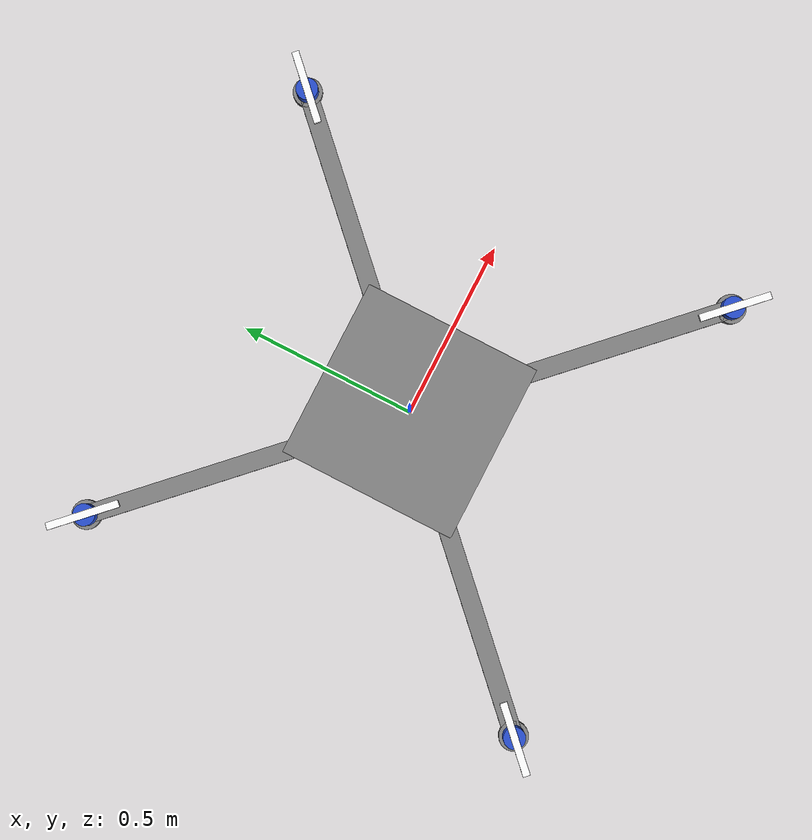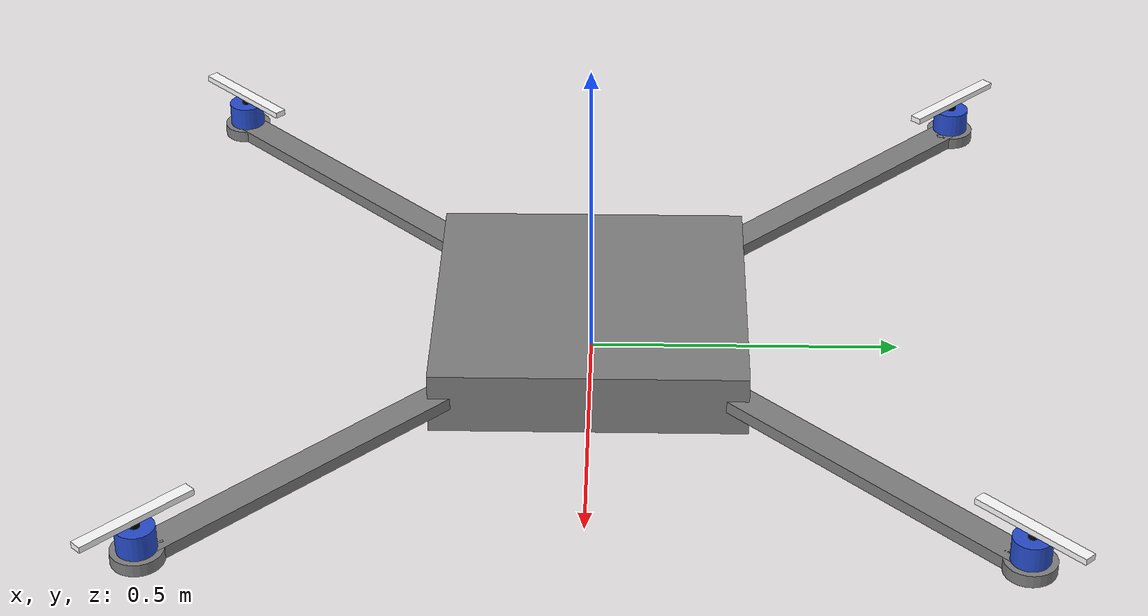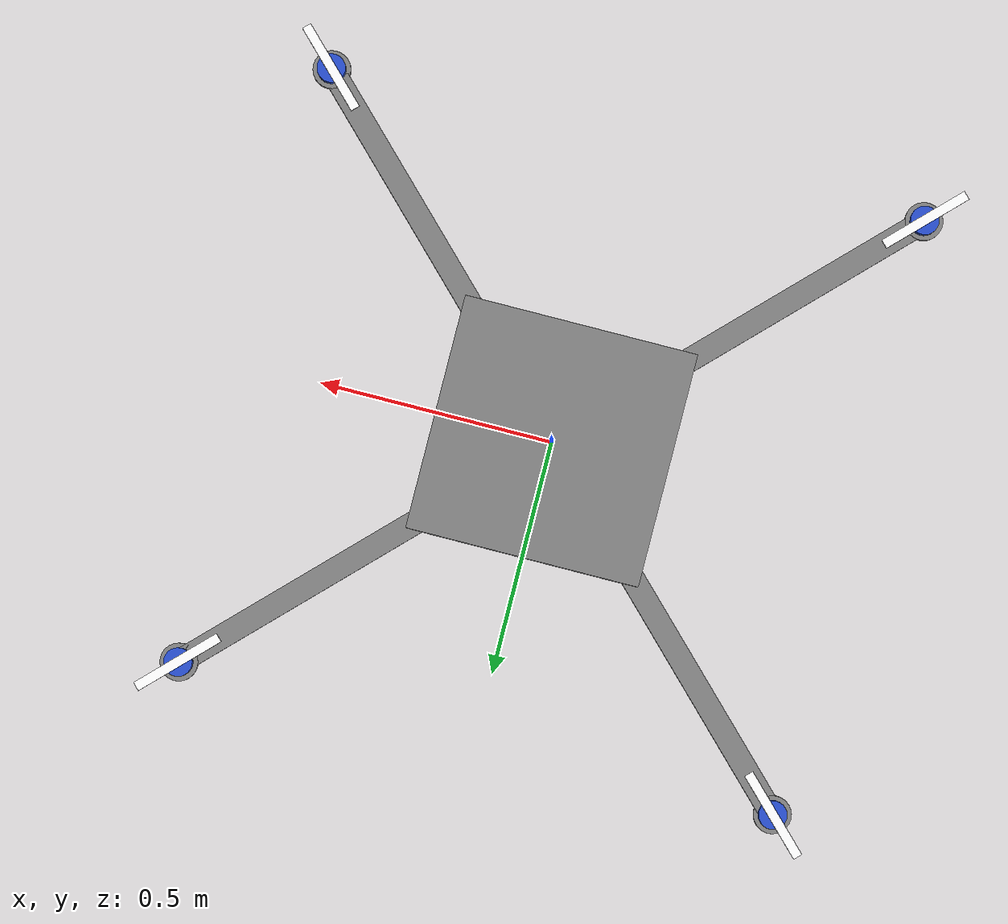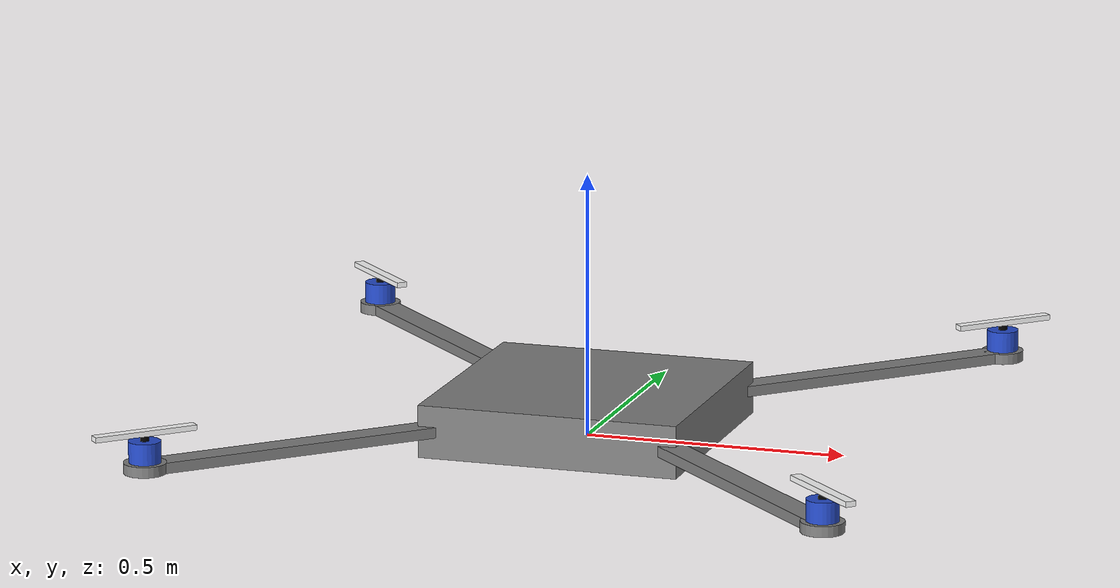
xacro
<?xml version="1.0"?>
<robot xmlns:xacro="http://www.ros.org/wiki/xacro" >
    <material name="grey">
        <color rgba="0.5 0.5 0.5 1.0" />
    </material>
    <material name="brown">
        <color rgba="0.2 0.1 0.0 1.0" />
    </material>
    <material name="black">
        <color rgba="0.0 0.0 0.0 1.0" />
    </material>
    <material name="white">
        <color rgba="1.0 1.0 1.0 1.0" />
    </material>

    <!-- Define enertial property macro -->
    <xacro:macro name="box_inertial" params="m w d h">
        <inertial>
            <origin xyz="0.0 0.0 0.0" rpy="0.0 0.0 0.0"/>
            <mass value="${m}"/>
            <inertia ixx="${(m/12) * (h*h + d*d)}" ixy="0.0" ixz="0.0" iyy="${(m/12) * (w*w + h*h)}" iyz="0.0" izz="${(m/12) * (w*w + d*d)}"/>
        </inertial>
    </xacro:macro>

    <xacro:macro name="cylinder_inertial" params="m r h">
        <inertial>
            <origin xyz="0.0 0.0 0.0" rpy="0.0 0.0 0.0"/>
            <mass value="${m}"/>
            <inertia ixx="${(m/12) * (3*r*r + h * h)}" ixy="0.0" ixz="0.0" iyy="${(m/12) * (3*r*r + h*h)}" iyz="0.0" izz="${(m/12) * (r * r)}"/>
        </inertial>
    </xacro:macro>

    <!-- QUADCOPTER -->
    <!--Base link-->
    <link name="base_link">
        <visual>
            <geometry>
                <box size="0.5 0.5 0.1"/>
            </geometry>
            <material name="grey" />
            <origin xyz="0.0 0.0 0.05" rpy="0.0 0.0 0.0"/>

        </visual>
        <collision>
            <geometry>
                <box size="0.5 0.5 0.1"/>
            </geometry>
            <origin xyz="0.0 0.0 0.05" rpy="0.0 0.0 0.0"/>
        </collision>
        <xacro:box_inertial m="2.0" w="0.5" d="0.5" h="0.1" />
    </link>

    <gazebo reference="base_link">
        <material>Gazebo/Orange</material>
    </gazebo>
    <!-- front right arm-->
    <link name="front_right_arm">
        <visual>
            <geometry>
                <box size="0.6 0.05 0.02"/>
            </geometry>
            <material name="grey" />
            <origin xyz="0.25 0.0 0.0" rpy="0.0 0.0 0.0"/>
        </visual>
        <collision>
            <geometry>
                <box size="0.6 0.05 0.02"/>
            </geometry>
            <origin xyz="0.25 0.0 0.0" rpy="0.0 0.0 0.0"/>
        </collision>
        <xacro:box_inertial m="1.0" w="0.6" d="0.05" h="0.02" />
    </link>
    <joint name="joint_front_right_arm" type="fixed">
        <parent link="base_link"/>
        <child link="front_right_arm"/>
        <origin xyz="0.25 0.25 0.05" rpy="0.0 0.0 ${pi/4}"/>
    </joint>

    <link name="front_right_arm_end">
        <visual>
            <geometry>
                <cylinder radius="0.04" length="0.02"/>
            </geometry>
            <material name="grey" />
        </visual>
        <collision>
            <geometry>
                <cylinder radius="0.04" length="0.02"/>
            </geometry>
        </collision>
        <xacro:cylinder_inertial m="1.0" r="0.04" h="0.02" />
    </link>
    <joint name="joint_front_right_arm_end" type="fixed">
        <parent link="front_right_arm"/>
        <child link="front_right_arm_end"/>
        <origin xyz="0.55 0.0 0.0" rpy="0.0 0.0 0.0"/>
    </joint>

    <!-- front left arm-->
    <link name="front_left_arm">
        <visual>
            <geometry>
                <box size="0.6 0.05 0.02"/>
            </geometry>
            <material name="grey" />
            <origin xyz="0.25 0.0 0.0" rpy="0.0 0.0 0.0"/>

        </visual>
        <collision>
            <geometry>
                <box size="0.6 0.05 0.02"/>
            </geometry>
            <origin xyz="0.25 0.0 0.0" rpy="0.0 0.0 0.0"/>
        </collision>
        <xacro:box_inertial m="1.0" w="0.6" d="0.05" h="0.02" />
    </link>
    <joint name="joint_front_left_arm" type="fixed">
        <parent link="base_link"/>
        <child link="front_left_arm"/>
        <origin xyz="0.25 -0.25 0.05" rpy="0.0 0.0 -${pi/4}"/>
    </joint>

    <link name="front_left_arm_end">
        <visual>
            <geometry>
                <cylinder radius="0.04" length="0.02"/>
            </geometry>
            <material name="grey" />
        </visual>
        <collision>
            <geometry>
                <cylinder radius="0.04" length="0.02"/>
            </geometry>
        </collision>
        <xacro:cylinder_inertial m="1.0" r="0.04" h="0.02" />
    </link>
    <joint name="joint_front_left_arm_end" type="fixed">
        <parent link="front_left_arm"/>
        <child link="front_left_arm_end"/>
        <origin xyz="0.55 0.0 0.0" rpy="0.0 0.0 0.0"/>
    </joint>

    <!-- back left arm-->
    <link name="back_left_arm">
        <visual>
            <geometry>
                <box size="0.6 0.05 0.02"/>
            </geometry>
            <material name="grey" />
            <origin xyz="0.25 0.0 0.0" rpy="0.0 0.0 0.0"/>

        </visual>
        <collision>
            <geometry>
                <box size="0.6 0.05 0.02"/>
            </geometry>
            <origin xyz="0.25 0.0 0.0" rpy="0.0 0.0 0.0"/>
        </collision>
        <xacro:box_inertial m="1.0" w="0.6" d="0.05" h="0.02" />
    </link>
    <joint name="joint_back_left_arm" type="fixed">
        <parent link="base_link"/>
        <child link="back_left_arm"/>
        <origin xyz="-0.25 -0.25 0.05" rpy="0.0 0.0 -${(pi/2 + pi/4)}"/>
    </joint>

    <link name="back_left_arm_end">
        <visual>
            <geometry>
                <cylinder radius="0.04" length="0.02"/>
            </geometry>
            <material name="grey" />
        </visual>
        <collision>
            <geometry>
                <cylinder radius="0.04" length="0.02"/>
            </geometry>
        </collision>
        <xacro:cylinder_inertial m="1.0" r="0.04" h="0.02" />
    </link>
    <joint name="joint_back_left_arm_end" type="fixed">
        <parent link="back_left_arm"/>
        <child link="back_left_arm_end"/>
        <origin xyz="0.55 0.0 0.0" rpy="0.0 0.0 0.0"/>
    </joint>

    <!-- back right arm-->
    <link name="back_right_arm">
        <visual>
            <geometry>
                <box size="0.6 0.05 0.02"/>
            </geometry>
            <material name="grey" />
            <origin xyz="0.25 0.0 0.0" rpy="0.0 0.0 0.0"/>

        </visual>
        <collision>
            <geometry>
                <box size="0.6 0.05 0.02"/>
            </geometry>
            <origin xyz="0.25 0.0 0.0" rpy="0.0 0.0 0.0"/>
        </collision>
        <xacro:box_inertial m="1.0" w="0.6" d="0.05" h="0.02" />
    </link>
    <joint name="joint_back_right_arm" type="fixed">
        <parent link="base_link"/>
        <child link="back_right_arm"/>
        <origin xyz="-0.25 0.25 0.05" rpy="0.0 0.0 ${(pi/2 + pi/4)}"/>
    </joint>

    <link name="back_right_arm_end">
        <visual>
            <geometry>
                <cylinder radius="0.04" length="0.02"/>
            </geometry>
            <material name="grey" />
        </visual>
        <collision>
            <geometry>
                <cylinder radius="0.04" length="0.02"/>
            </geometry>
        </collision>
        <xacro:cylinder_inertial m="1.0" r="0.04" h="0.02" />
    </link>
    <joint name="joint_back_right_arm_end" type="fixed">
        <parent link="back_right_arm"/>
        <child link="back_right_arm_end"/>
        <origin xyz="0.55 0.0 0.0" rpy="0.0 0.0 0.0"/>
    </joint>
    <!-- END QUADCAPTOR-->
    <!-- MOTORS-->
    <link name="front_right_motor">
        <visual>
            <geometry>
                <cylinder radius="0.03" length="0.05"/>
            </geometry>
        </visual>
        <collision>
            <geometry>
                <cylinder radius="0.03" length="0.05"/>
            </geometry>
        </collision>
        <xacro:cylinder_inertial m="1.3" r="0.03" h="0.05" />
    </link>
    <gazebo reference="front_right_motor">
        <material>Gazebo/Blue</material>
    </gazebo>
    <joint name="joint_front_right_motor" type="fixed">
        <parent link="front_right_arm_end"/>
        <child link="front_right_motor"/>
        <origin xyz="0.0 0.0 0.025" rpy="0.0 0.0 0.0"/>
    </joint>

    <link name="front_left_motor">
        <visual>
            <geometry>
                <cylinder radius="0.03" length="0.05"/>
            </geometry>
        </visual>
        <collision>
            <geometry>
                <cylinder radius="0.03" length="0.05"/>
            </geometry>
        </collision>
        <xacro:cylinder_inertial m="1.3" r="0.03" h="0.05" />
    </link>
    <gazebo reference="front_left_motor">
        <material>Gazebo/Blue</material>
    </gazebo>
    <joint name="joint_front_left_motor" type="fixed">
        <parent link="front_left_arm_end"/>
        <child link="front_left_motor"/>
        <origin xyz="0.0 0.0 0.025" rpy="0.0 0.0 0.0"/>
    </joint>

    <link name="back_right_motor">
        <visual>
            <geometry>
                <cylinder radius="0.03" length="0.05"/>
            </geometry>
        </visual>
        <collision>
            <geometry>
                <cylinder radius="0.03" length="0.05"/>
            </geometry>
        </collision>
        <xacro:cylinder_inertial m="1.3" r="0.03" h="0.05" />
    </link>
    <gazebo reference="back_right_motor">
        <material>Gazebo/Blue</material>
    </gazebo>
    <joint name="joint_back_right_motor" type="fixed">
        <parent link="back_right_arm_end"/>
        <child link="back_right_motor"/>
        <origin xyz="0.0 0.0 0.025" rpy="0.0 0.0 0.0"/>
    </joint>

    <link name="back_left_motor">
        <visual>
            <geometry>
                <cylinder radius="0.03" length="0.05"/>
            </geometry>
        </visual>
        <collision>
            <geometry>
                <cylinder radius="0.03" length="0.05"/>
            </geometry>
        </collision>
        <xacro:cylinder_inertial m="1.3" r="0.03" h="0.05" />
    </link>
    <gazebo reference="back_left_motor">
        <material>Gazebo/Blue</material>
    </gazebo>
    <joint name="joint_back_left_motor" type="fixed">
        <parent link="back_left_arm_end"/>
        <child link="back_left_motor"/>
        <origin xyz="0.0 0.0 0.025" rpy="0.0 0.0 0.0"/>
    </joint>

    <!--motor arm-->
    <link name="front_right_motor_arm">
        <visual>
            <geometry>
                <cylinder radius="0.008" length="0.03"/>
            </geometry>
            <material name="black" />
        </visual>
        <collision>
            <geometry>
                <cylinder radius="0.008" length="0.03"/>
            </geometry>
        </collision>
        <xacro:cylinder_inertial m="1.3" r="0.008" h="0.03" />
    </link>
    <joint name="joint_front_right_motor_arm" type="fixed">
        <parent link="front_right_motor"/>
        <child link="front_right_motor_arm"/>
        <origin xyz="0.0 0.0 0.025" rpy="0.0 0.0 0.0"/>
    </joint>

    <link name="front_left_motor_arm">
        <visual>
            <geometry>
                <cylinder radius="0.008" length="0.03"/>
            </geometry>
            <material name="black" />
        </visual>
        <collision>
            <geometry>
                <cylinder radius="0.008" length="0.03"/>
            </geometry>
        </collision>
        <xacro:cylinder_inertial m="1.3" r="0.008" h="0.03" />
    </link>
    <joint name="joint_front_left_motor_arm" type="fixed">
        <parent link="front_left_motor"/>
        <child link="front_left_motor_arm"/>
        <origin xyz="0.0 0.0 0.025" rpy="0.0 0.0 0.0"/>
    </joint>

    <link name="back_right_motor_arm">
        <visual>
            <geometry>
                <cylinder radius="0.008" length="0.03"/>
            </geometry>
            <material name="black" />
        </visual>
        <collision>
            <geometry>
                <cylinder radius="0.008" length="0.03"/>
            </geometry>
        </collision>
        <xacro:cylinder_inertial m="1.3" r="0.008" h="0.03" />
    </link>
    <joint name="joint_back_right_motor_arm" type="fixed">
        <parent link="back_right_motor"/>
        <child link="back_right_motor_arm"/>
        <origin xyz="0.0 0.0 0.025" rpy="0.0 0.0 0.0"/>
    </joint>

    <link name="back_left_motor_arm">
        <visual>
            <geometry>
                <cylinder radius="0.008" length="0.03"/>
            </geometry>
            <material name="black" />
        </visual>
        <collision>
            <geometry>
                <cylinder radius="0.008" length="0.03"/>
            </geometry>
        </collision>
        <xacro:cylinder_inertial m="1.3" r="0.008" h="0.03" />
    </link>
    <joint name="joint_back_left_motor_arm" type="fixed">
        <parent link="back_left_motor"/>
        <child link="back_left_motor_arm"/>
        <origin xyz="0.0 0.0 0.025" rpy="0.0 0.0 0.0"/>
    </joint>
    <!-- Propellers-->
    <link name="front_right_propeller">
        <visual>
            <geometry>
                <box size="0.2 0.02 0.01"/>
            </geometry>
            <material name="white" />
        </visual>
        <collision>
            <geometry>
                <box size="0.2 0.02 0.01"/>
            </geometry>
        </collision>
        <xacro:box_inertial m="0.5" w="0.2" d="0.02" h="0.01" />
    </link>
    <gazebo reference="front_right_propeller">
        <material>Gazebo/Red</material>
    </gazebo>
    <joint name="joint_front_right_propeller" type="continuous">
        <parent link="front_right_motor_arm"/>
        <child link="front_right_propeller"/>
        <axis xyz="0 0 ${2*pi}"/>
        <origin xyz="0 0 0.015" rpy="0 0 0"/>
    </joint>

    <link name="front_left_propeller">
        <visual>
            <geometry>
                <box size="0.2 0.02 0.01"/>
            </geometry>
            <material name="white" />
        </visual>
        <collision>
            <geometry>
                <box size="0.2 0.02 0.01"/>
            </geometry>
        </collision>
        <xacro:box_inertial m="0.5" w="0.2" d="0.02" h="0.01" />
    </link>
    <gazebo reference="front_left_propeller">
        <material>Gazebo/Red</material>
    </gazebo>
    <joint name="joint_front_left_propeller" type="continuous">
        <parent link="front_left_motor_arm"/>
        <child link="front_left_propeller"/>
        <axis xyz="0 0 ${2*pi}"/>
        <origin xyz="0 0 0.015" rpy="0 0 0"/>
    </joint>

    <link name="back_right_propeller">
        <visual>
            <geometry>
                <box size="0.2 0.02 0.01"/>
            </geometry>
            <material name="white" />
        </visual>
        <collision>
            <geometry>
                <box size="0.2 0.02 0.01"/>
            </geometry>
        </collision>
        <xacro:box_inertial m="0.5" w="0.2" d="0.02" h="0.01" />
    </link>
    <gazebo reference="back_right_propeller">
        <material>Gazebo/Red</material>
    </gazebo>
    <joint name="joint_back_right_propeller" type="continuous">
        <parent link="back_right_motor_arm"/>
        <child link="back_right_propeller"/>
        <axis xyz="0 0 ${2*pi}"/>
        <origin xyz="0 0 0.015" rpy="0 0 0"/>
    </joint>

    <link name="back_left_propeller">
        <visual>
            <geometry>
                <box size="0.2 0.02 0.01"/>
            </geometry>
            <material name="white" />
        </visual>
        <collision>
            <geometry>
                <box size="0.2 0.02 0.01"/>
            </geometry>
        </collision>
        <xacro:box_inertial m="0.5" w="0.2" d="0.02" h="0.01" />
    </link>
    <gazebo reference="back_left_propeller">
        <material>Gazebo/Red</material>
    </gazebo>
    <joint name="joint_back_left_propeller" type="continuous">
        <parent link="back_left_motor_arm"/>
        <child link="back_left_propeller"/>
        <axis xyz="0 0 ${2*pi}"/>
        <origin xyz="0 0 0.015" rpy="0 0 0"/>
    </joint>

</robot>
